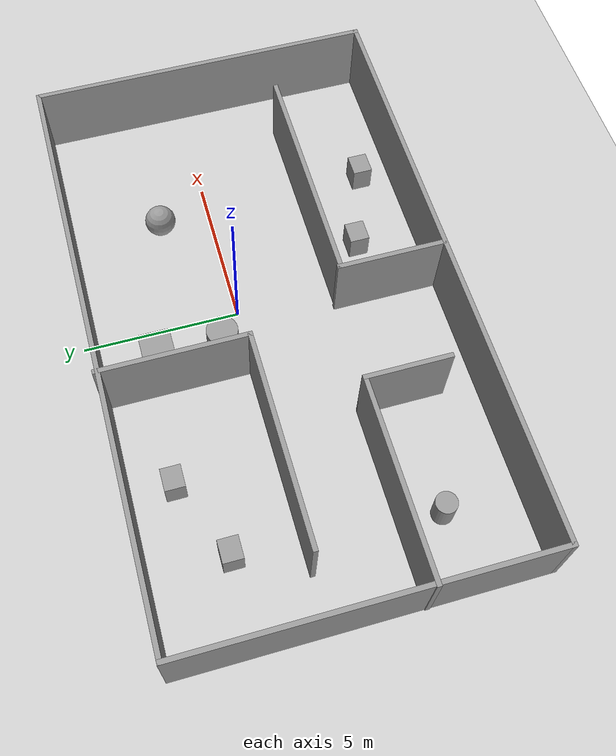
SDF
<sdf version="1.7">
 <world name="default">
  <plugin name="gazebo_ros_state" filename="libgazebo_ros_state.so">
   <ros><namespace>/gazebo_state</namespace></ros>
   <update_rate>30.0</update_rate>
  </plugin>
  <light name="sun" type="directional">
   <pose>0 0 10 0 -0 0</pose>
   <diffuse>0.8 0.8 0.8 1</diffuse>
   <specular>0.2 0.2 0.2 1</specular>
   <attenuation>
    <range>1000</range>
    <constant>0.9</constant>
    <linear>0.01</linear>
    <quadratic>0.001</quadratic>
   </attenuation>
   <direction>-0.5 0.1 -0.9</direction>
   <spot><inner_angle>0</inner_angle><outer_angle>0</outer_angle><falloff>0</falloff></spot>
  </light>
  <model name="ground_plane">
   <static>1</static>
   <link name="link">
    <collision name="collision">
     <geometry><plane><normal>0 0 1</normal><size>100 100</size></plane></geometry>
     <surface><friction><ode><mu>100</mu><mu2>50</mu2></ode></friction></surface>
    </collision>
    <visual name="visual">
     <cast_shadows>0</cast_shadows>
     <geometry><plane><normal>0 0 1</normal><size>100 100</size></plane></geometry>
     <material>
      <script><uri>file://media/materials/scripts/gazebo.material</uri><name>Gazebo/Grey</name></script>
     </material>
    </visual>
   </link>
  </model>
  <gravity>0 0 -9.8</gravity>
  <magnetic_field>6e-06 2.3e-05 -4.2e-05</magnetic_field>
  <atmosphere type="adiabatic"/>
  <physics type="ode">
   <max_step_size>0.001</max_step_size>
   <real_time_factor>1</real_time_factor>
   <real_time_update_rate>1000</real_time_update_rate>
  </physics>
  <scene><ambient>0.4 0.4 0.4 1</ambient><background>0.7 0.7 0.7 1</background><shadows>1</shadows></scene>
  <audio><device>default</device></audio>
  <spherical_coordinates>
   <surface_model>EARTH_WGS84</surface_model>
   <latitude_deg>0</latitude_deg>
   <longitude_deg>0</longitude_deg>
   <elevation>0</elevation>
   <heading_deg>0</heading_deg>
  </spherical_coordinates>
  <model name="room">
   <pose>-0.972666 -0.90388 0 0 -0 0</pose>
   <link name="Wall_66">
    <collision name="Wall_66_Collision">
     <geometry><box><size>19 0.15 2.5</size></box></geometry>
     <pose>0 0 1.25 0 -0 0</pose>
    </collision>
    <visual name="Wall_66_Visual">
     <pose>0 0 1.25 0 -0 0</pose>
     <geometry><box><size>19 0.15 2.5</size></box></geometry>
     <material>
      <script><uri>file://media/materials/scripts/gazebo.material</uri><name>Gazebo/Grey</name></script>
      <ambient>1 1 1 1</ambient>
     </material>
     <meta><layer>0</layer></meta>
    </visual>
    <pose>0.013921 5.50955 0 0 -0 0</pose>
   </link>
   <link name="Wall_67">
    <collision name="Wall_67_Collision">
     <geometry><box><size>11.25 0.15 2.5</size></box></geometry>
     <pose>0 0 1.25 0 -0 0</pose>
    </collision>
    <visual name="Wall_67_Visual">
     <pose>0 0 1.25 0 -0 0</pose>
     <geometry><box><size>11.25 0.15 2.5</size></box></geometry>
     <material>
      <script><uri>file://media/materials/scripts/gazebo.material</uri><name>Gazebo/Grey</name></script>
      <ambient>1 1 1 1</ambient>
     </material>
     <meta><layer>0</layer></meta>
    </visual>
    <pose>9.43892 -0.040455 0 0 -0 -1.5708</pose>
   </link>
   <link name="Wall_68">
    <collision name="Wall_68_Collision">
     <geometry><box><size>19 0.15 2.5</size></box></geometry>
     <pose>0 0 1.25 0 -0 0</pose>
    </collision>
    <visual name="Wall_68_Visual">
     <pose>0 0 1.25 0 -0 0</pose>
     <geometry><box><size>19 0.15 2.5</size></box></geometry>
     <material>
      <script><uri>file://media/materials/scripts/gazebo.material</uri><name>Gazebo/Grey</name></script>
      <ambient>1 1 1 1</ambient>
     </material>
     <meta><layer>0</layer></meta>
    </visual>
    <pose>0.013921 -5.59046 0 0 -0 3.14159</pose>
   </link>
   <link name="Wall_69">
    <collision name="Wall_69_Collision">
     <geometry><box><size>11.25 0.15 2.5</size></box></geometry>
     <pose>0 0 1.25 0 -0 0</pose>
    </collision>
    <visual name="Wall_69_Visual">
     <pose>0 0 1.25 0 -0 0</pose>
     <geometry><box><size>11.25 0.15 2.5</size></box></geometry>
     <material>
      <script><uri>file://media/materials/scripts/gazebo.material</uri><name>Gazebo/Grey</name></script>
      <ambient>1 1 1 1</ambient>
     </material>
     <meta><layer>0</layer></meta>
    </visual>
    <pose>-9.41108 -0.040455 0 0 -0 1.5708</pose>
   </link>
   <link name="Wall_71">
    <collision name="Wall_71_Collision">
     <geometry><box><size>4.75 0.15 2.5</size></box></geometry>
     <pose>0 0 1.25 0 -0 0</pose>
    </collision>
    <visual name="Wall_71_Visual">
     <pose>0 0 1.25 0 -0 0</pose>
     <geometry><box><size>4.75 0.15 2.5</size></box></geometry>
     <material>
      <script><uri>file://media/materials/scripts/gazebo.material</uri><name>Gazebo/Grey</name></script>
      <ambient>1 1 1 1</ambient>
     </material>
     <meta><layer>0</layer></meta>
    </visual>
    <pose>-1.11769 3.29046 0 0 -0 -1.5708</pose>
   </link>
   <link name="Wall_72">
    <collision name="Wall_72_Collision">
     <geometry><box><size>6.75 0.15 2.5</size></box></geometry>
     <pose>0 0 1.25 0 -0 0</pose>
    </collision>
    <visual name="Wall_72_Visual">
     <pose>0 0 1.25 0 -0 0</pose>
     <geometry><box><size>6.75 0.15 2.5</size></box></geometry>
     <material>
      <script><uri>file://media/materials/scripts/gazebo.material</uri><name>Gazebo/Grey</name></script>
      <ambient>1 1 1 1</ambient>
     </material>
     <meta><layer>0</layer></meta>
    </visual>
    <pose>-4.41769 0.990456 0 0 -0 3.14159</pose>
   </link>
   <link name="Wall_79">
    <collision name="Wall_79_Collision">
     <geometry><box><size>3.47722 0.15 2.5</size></box></geometry>
     <pose>0 0 1.25 0 -0 0</pose>
    </collision>
    <visual name="Wall_79_Visual">
     <pose>0 0 1.25 0 -0 0</pose>
     <geometry><box><size>3.47722 0.15 2.5</size></box></geometry>
     <material>
      <script><uri>file://media/materials/scripts/gazebo.material</uri><name>Gazebo/Grey</name></script>
      <ambient>1 1 1 1</ambient>
     </material>
     <meta><layer>0</layer></meta>
    </visual>
    <pose>0.391784 -3.86799 0 0 -0 1.5708</pose>
   </link>
   <link name="Wall_80">
    <collision name="Wall_80_Collision">
     <geometry><box><size>7.5 0.15 2.5</size></box></geometry>
     <pose>0 0 1.25 0 -0 0</pose>
    </collision>
    <visual name="Wall_80_Visual">
     <pose>0 0 1.25 0 -0 0</pose>
     <geometry><box><size>7.5 0.15 2.5</size></box></geometry>
     <material>
      <script><uri>file://media/materials/scripts/gazebo.material</uri><name>Gazebo/Grey</name></script>
      <ambient>1 1 1 1</ambient>
     </material>
     <meta><layer>0</layer></meta>
    </visual>
    <pose>4.06678 -2.24484 0 0 -0 0</pose>
   </link>
   <link name="Wall_85">
    <collision name="Wall_85_Collision">
     <geometry><box><size>6.25 0.15 2.5</size></box></geometry>
     <pose>0 0 1.25 0 -0 0</pose>
    </collision>
    <visual name="Wall_85_Visual">
     <pose>0 0 1.25 0 -0 0</pose>
     <geometry><box><size>6.25 0.15 2.5</size></box></geometry>
     <material>
      <script><uri>file://media/materials/scripts/gazebo.material</uri><name>Gazebo/Grey</name></script>
      <ambient>1 1 1 1</ambient>
     </material>
     <meta><layer>0</layer></meta>
    </visual>
    <pose>-6.38892 -1.80969 0 0 -0 0</pose>
   </link>
   <link name="Wall_86">
    <collision name="Wall_86_Collision">
     <geometry><box><size>2.75 0.15 2.5</size></box></geometry>
     <pose>0 0 1.25 0 -0 0</pose>
    </collision>
    <visual name="Wall_86_Visual">
     <pose>0 0 1.25 0 -0 0</pose>
     <geometry><box><size>2.75 0.15 2.5</size></box></geometry>
     <material>
      <script><uri>file://media/materials/scripts/gazebo.material</uri><name>Gazebo/Grey</name></script>
      <ambient>1 1 1 1</ambient>
     </material>
     <meta><layer>0</layer></meta>
    </visual>
    <pose>-3.33892 -3.10969 0 0 -0 -1.5708</pose>
   </link>
   <static>1</static>
  </model>
  <model name="unit_cylinder">
   <pose>-0.961047 0.717234 0.499994 -4e-06 -3e-06 -0</pose>
   <link name="link">
    <inertial>
     <mass>1</mass>
     <inertia><ixx>0.145833</ixx><ixy>0</ixy><ixz>0</ixz><iyy>0.145833</iyy><iyz>0</iyz><izz>0.125</izz></inertia>
    </inertial>
    <collision name="collision">
     <geometry><cylinder><radius>0.5</radius><length>1</length></cylinder></geometry>
    </collision>
    <visual name="visual">
     <geometry><cylinder><radius>0.5</radius><length>1</length></cylinder></geometry>
     <material>
      <script><name>Gazebo/Grey</name><uri>file://media/materials/scripts/gazebo.material</uri></script>
     </material>
    </visual>
   </link>
  </model>
  <model name="unit_box">
   <pose>-0.958116 2.77839 0.499995 0 1e-05 0</pose>
   <link name="link">
    <inertial>
     <mass>1</mass>
     <inertia>
      <ixx>0.166667</ixx>
      <ixy>0</ixy>
      <ixz>0</ixz>
      <iyy>0.166667</iyy>
      <iyz>0</iyz>
      <izz>0.166667</izz>
     </inertia>
    </inertial>
    <collision name="collision"><geometry><box><size>1 1 1</size></box></geometry></collision>
    <visual name="visual">
     <geometry><box><size>1 1 1</size></box></geometry>
     <material>
      <script><name>Gazebo/Grey</name><uri>file://media/materials/scripts/gazebo.material</uri></script>
     </material>
    </visual>
   </link>
  </model>
  <model name="unit_sphere">
   <pose>3.87833 1.65003 0.5 0 -0 0</pose>
   <link name="link">
    <inertial>
     <mass>1</mass>
     <inertia><ixx>0.1</ixx><ixy>0</ixy><ixz>0</ixz><iyy>0.1</iyy><iyz>0</iyz><izz>0.1</izz></inertia>
    </inertial>
    <collision name="collision"><geometry><sphere><radius>0.5</radius></sphere></geometry></collision>
    <visual name="visual">
     <geometry><sphere><radius>0.5</radius></sphere></geometry>
     <material>
      <script><name>Gazebo/Grey</name><uri>file://media/materials/scripts/gazebo.material</uri></script>
     </material>
    </visual>
   </link>
  </model>
  <model name="unit_box_0">
   <pose>1.47624 -4.42586 0.451218 0 -0 0</pose>
   <link name="link">
    <inertial>
     <mass>1</mass>
     <inertia>
      <ixx>0.166667</ixx>
      <ixy>0</ixy>
      <ixz>0</ixz>
      <iyy>0.166667</iyy>
      <iyz>0</iyz>
      <izz>0.166667</izz>
     </inertia>
    </inertial>
    <collision name="collision">
     <geometry><box><size>0.703218 0.623888 0.902436</size></box></geometry>
    </collision>
    <visual name="visual">
     <geometry><box><size>0.703218 0.623888 0.902436</size></box></geometry>
     <material>
      <script><name>Gazebo/Grey</name><uri>file://media/materials/scripts/gazebo.material</uri></script>
     </material>
    </visual>
   </link>
  </model>
  <model name="unit_box_0_clone">
   <pose>4.07679 -5.36245 0.451218 0 -0 0</pose>
   <link name="link">
    <inertial>
     <mass>1</mass>
     <inertia>
      <ixx>0.166667</ixx>
      <ixy>0</ixy>
      <ixz>0</ixz>
      <iyy>0.166667</iyy>
      <iyz>0</iyz>
      <izz>0.166667</izz>
     </inertia>
    </inertial>
    <collision name="collision">
     <geometry><box><size>0.703218 0.623888 0.902436</size></box></geometry>
    </collision>
    <visual name="visual">
     <geometry><box><size>0.703218 0.623888 0.902436</size></box></geometry>
     <material>
      <script><name>Gazebo/Grey</name><uri>file://media/materials/scripts/gazebo.material</uri></script>
     </material>
    </visual>
   </link>
  </model>
  <model name="unit_box_0_clone_0">
   <pose>-5.18575 3.24433 0.451218 0 -0 0</pose>
   <link name="link">
    <inertial>
     <mass>1</mass>
     <inertia>
      <ixx>0.166667</ixx>
      <ixy>0</ixy>
      <ixz>0</ixz>
      <iyy>0.166667</iyy>
      <iyz>0</iyz>
      <izz>0.166667</izz>
     </inertia>
    </inertial>
    <collision name="collision">
     <geometry><box><size>0.703218 0.623888 0.902436</size></box></geometry>
    </collision>
    <visual name="visual">
     <geometry><box><size>0.703218 0.623888 0.902436</size></box></geometry>
     <material>
      <script><name>Gazebo/Grey</name><uri>file://media/materials/scripts/gazebo.material</uri></script>
     </material>
    </visual>
   </link>
  </model>
  <model name="unit_box_0_clone_0_clone">
   <pose>-7.64042 2.15611 0.451218 0 -0 0</pose>
   <link name="link">
    <inertial>
     <mass>1</mass>
     <inertia>
      <ixx>0.166667</ixx>
      <ixy>0</ixy>
      <ixz>0</ixz>
      <iyy>0.166667</iyy>
      <iyz>0</iyz>
      <izz>0.166667</izz>
     </inertia>
    </inertial>
    <collision name="collision">
     <geometry><box><size>0.703218 0.623888 0.902436</size></box></geometry>
    </collision>
    <visual name="visual">
     <geometry><box><size>0.703218 0.623888 0.902436</size></box></geometry>
     <material>
      <script><name>Gazebo/Grey</name><uri>file://media/materials/scripts/gazebo.material</uri></script>
     </material>
    </visual>
   </link>
  </model>
  <model name="unit_cylinder_0">
   <pose>-8.00136 -4.04769 0.499997 0 -0 0</pose>
   <link name="link">
    <inertial>
     <mass>1</mass>
     <inertia><ixx>0.145833</ixx><ixy>0</ixy><ixz>0</ixz><iyy>0.145833</iyy><iyz>0</iyz><izz>0.125</izz></inertia>
    </inertial>
    <collision name="collision">
     <geometry><cylinder><radius>0.335093</radius><length>1</length></cylinder></geometry>
    </collision>
    <visual name="visual">
     <geometry><cylinder><radius>0.335093</radius><length>1</length></cylinder></geometry>
     <material>
      <script><name>Gazebo/Grey</name><uri>file://media/materials/scripts/gazebo.material</uri></script>
     </material>
    </visual>
   </link>
  </model>
 </world>
</sdf>
